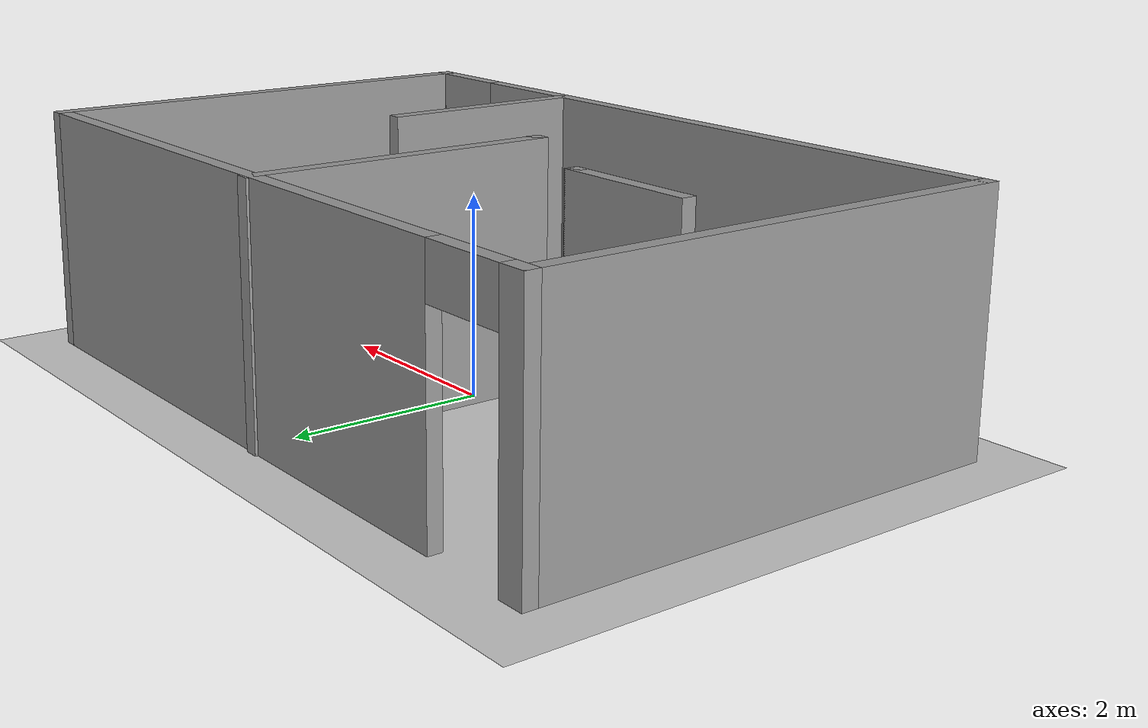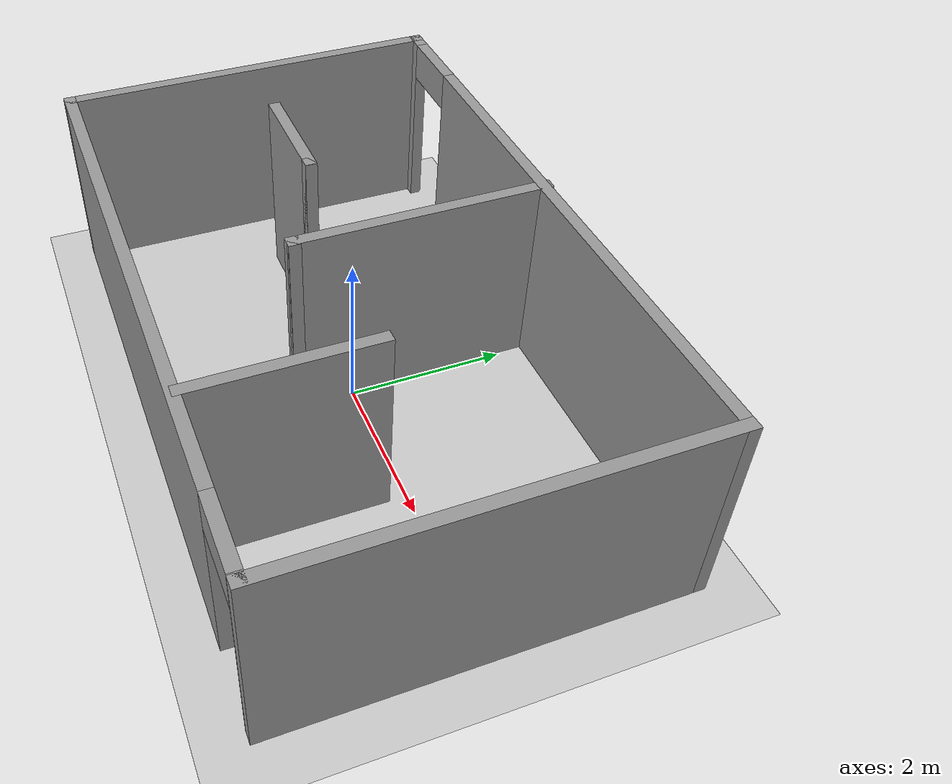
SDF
<?xml version="1.0" ?>
<sdf version="1.6">
  <world name="cooperative_room_world">

    <include>
      <uri>model://sun</uri>
    </include>

    <include>
      <uri>model://ground_plane</uri>
    </include>

    <include>
      <uri>model://cooperative_room</uri>
      <pose>0 0 0 0 0 0</pose>
    </include>

  </world>
</sdf>

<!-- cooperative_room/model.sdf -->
<sdf version='1.7'>
  <model name='cooperative_room'>
    <pose>1.065 -1.59136 0 0 -0 0</pose>
    <link name='Wall_0'>
      <pose>0 -2.43864 0 0 -0 0</pose>
      <visual name='Wall_0_Visual_0'>
        <pose>-0.530912 0 1.25 0 -0 0</pose>
        <geometry>
          <box>
            <size>6.93818 0.15 2.5</size>
          </box>
        </geometry>
        <material>
          <script>
            <uri>file://media/materials/scripts/gazebo.material</uri>
            <name>Gazebo/Grey</name>
          </script>
          <ambient>1 1 1 1</ambient>
        </material>
        <meta>
          <layer>0</layer>
        </meta>
      </visual>
      <collision name='Wall_0_Collision_0'>
        <geometry>
          <box>
            <size>6.93818 0.15 2.5</size>
          </box>
        </geometry>
        <pose>-0.530912 0 1.25 0 -0 0</pose>
      </collision>
      <visual name='Wall_0_Visual_1'>
        <pose>3.91909 0 1.25 0 -0 0</pose>
        <geometry>
          <box>
            <size>0.161823 0.15 2.5</size>
          </box>
        </geometry>
        <material>
          <script>
            <uri>file://media/materials/scripts/gazebo.material</uri>
            <name>Gazebo/Grey</name>
          </script>
          <ambient>1 1 1 1</ambient>
        </material>
        <meta>
          <layer>0</layer>
        </meta>
      </visual>
      <collision name='Wall_0_Collision_1'>
        <geometry>
          <box>
            <size>0.161823 0.15 2.5</size>
          </box>
        </geometry>
        <pose>3.91909 0 1.25 0 -0 0</pose>
      </collision>
      <visual name='Wall_0_Visual_2'>
        <pose>3.38818 0 2.25 0 -0 0</pose>
        <geometry>
          <box>
            <size>0.9 0.15 0.5</size>
          </box>
        </geometry>
        <material>
          <script>
            <uri>file://media/materials/scripts/gazebo.material</uri>
            <name>Gazebo/Grey</name>
          </script>
          <ambient>1 1 1 1</ambient>
        </material>
        <meta>
          <layer>0</layer>
        </meta>
      </visual>
      <collision name='Wall_0_Collision_2'>
        <geometry>
          <box>
            <size>0.9 0.15 0.5</size>
          </box>
        </geometry>
        <pose>3.38818 0 2.25 0 -0 0</pose>
      </collision>
    </link>
    <link name='Wall_1'>
      <collision name='Wall_1_Collision'>
        <geometry>
          <box>
            <size>5 0.15 2.5</size>
          </box>
        </geometry>
        <pose>0 0 1.25 0 -0 0</pose>
      </collision>
      <visual name='Wall_1_Visual'>
        <pose>0 0 1.25 0 -0 0</pose>
        <geometry>
          <box>
            <size>5 0.15 2.5</size>
          </box>
        </geometry>
        <material>
          <script>
            <uri>file://media/materials/scripts/gazebo.material</uri>
            <name>Gazebo/Grey</name>
          </script>
          <ambient>1 1 1 1</ambient>
        </material>
        <meta>
          <layer>0</layer>
        </meta>
      </visual>
      <pose>3.925 -0.013644 0 0 -0 1.5708</pose>
    </link>
    <link name='Wall_10'>
      <collision name='Wall_10_Collision'>
        <geometry>
          <box>
            <size>0.15 0.15 2.5</size>
          </box>
        </geometry>
        <pose>0 0 1.25 0 -0 0</pose>
      </collision>
      <visual name='Wall_10_Visual'>
        <pose>0 0 1.25 0 -0 0</pose>
        <geometry>
          <box>
            <size>0.15 0.15 2.5</size>
          </box>
        </geometry>
        <material>
          <script>
            <uri>file://media/materials/scripts/gazebo.material</uri>
            <name>Gazebo/Grey</name>
          </script>
          <ambient>1 1 1 1</ambient>
        </material>
        <meta>
          <layer>0</layer>
        </meta>
      </visual>
      <pose>-1.51738 0.010254 0 0 -0 0</pose>
    </link>
    <link name='Wall_12'>
      <collision name='Wall_12_Collision'>
        <geometry>
          <box>
            <size>2.25 0.15 2.5</size>
          </box>
        </geometry>
        <pose>0 0 1.25 0 -0 0</pose>
      </collision>
      <visual name='Wall_12_Visual'>
        <pose>0 0 1.25 0 -0 0</pose>
        <geometry>
          <box>
            <size>2.25 0.15 2.5</size>
          </box>
        </geometry>
        <material>
          <script>
            <uri>file://media/materials/scripts/gazebo.material</uri>
            <name>Gazebo/Grey</name>
          </script>
          <ambient>1 1 1 1</ambient>
        </material>
        <meta>
          <layer>0</layer>
        </meta>
      </visual>
      <pose>1.68003 -1.32871 0 0 -0 -1.5708</pose>
    </link>
    <link name='Wall_2'>
      <pose>0 2.41136 0 0 -0 3.14159</pose>
      <visual name='Wall_2_Visual_0'>
        <pose>-0.590292 0 1.25 0 -0 0</pose>
        <geometry>
          <box>
            <size>6.81942 0.15 2.5</size>
          </box>
        </geometry>
        <material>
          <script>
            <uri>file://media/materials/scripts/gazebo.material</uri>
            <name>Gazebo/Grey</name>
          </script>
          <ambient>1 1 1 1</ambient>
        </material>
        <meta>
          <layer>0</layer>
        </meta>
      </visual>
      <collision name='Wall_2_Collision_0'>
        <geometry>
          <box>
            <size>6.81942 0.15 2.5</size>
          </box>
        </geometry>
        <pose>-0.590292 0 1.25 0 -0 0</pose>
      </collision>
      <visual name='Wall_2_Visual_1'>
        <pose>3.85971 0 1.25 0 -0 0</pose>
        <geometry>
          <box>
            <size>0.280585 0.15 2.5</size>
          </box>
        </geometry>
        <material>
          <script>
            <uri>file://media/materials/scripts/gazebo.material</uri>
            <name>Gazebo/Grey</name>
          </script>
          <ambient>1 1 1 1</ambient>
        </material>
        <meta>
          <layer>0</layer>
        </meta>
      </visual>
      <collision name='Wall_2_Collision_1'>
        <geometry>
          <box>
            <size>0.280585 0.15 2.5</size>
          </box>
        </geometry>
        <pose>3.85971 0 1.25 0 -0 0</pose>
      </collision>
      <visual name='Wall_2_Visual_2'>
        <pose>3.26941 0 2.25 0 -0 0</pose>
        <geometry>
          <box>
            <size>0.9 0.15 0.5</size>
          </box>
        </geometry>
        <material>
          <script>
            <uri>file://media/materials/scripts/gazebo.material</uri>
            <name>Gazebo/Grey</name>
          </script>
          <ambient>1 1 1 1</ambient>
        </material>
        <meta>
          <layer>0</layer>
        </meta>
      </visual>
      <collision name='Wall_2_Collision_2'>
        <geometry>
          <box>
            <size>0.9 0.15 0.5</size>
          </box>
        </geometry>
        <pose>3.26941 0 2.25 0 -0 0</pose>
      </collision>
    </link>
    <link name='Wall_3'>
      <collision name='Wall_3_Collision'>
        <geometry>
          <box>
            <size>5 0.15 2.5</size>
          </box>
        </geometry>
        <pose>0 0 1.25 0 -0 0</pose>
      </collision>
      <visual name='Wall_3_Visual'>
        <pose>0 0 1.25 0 -0 0</pose>
        <geometry>
          <box>
            <size>5 0.15 2.5</size>
          </box>
        </geometry>
        <material>
          <script>
            <uri>file://media/materials/scripts/gazebo.material</uri>
            <name>Gazebo/Grey</name>
          </script>
          <ambient>1 1 1 1</ambient>
        </material>
        <meta>
          <layer>0</layer>
        </meta>
      </visual>
      <pose>-3.925 -0.013644 0 0 -0 -1.5708</pose>
    </link>
    <link name='Wall_4'>
      <collision name='Wall_4_Collision'>
        <geometry>
          <box>
            <size>0.16 0.15 2.5</size>
          </box>
        </geometry>
        <pose>0 0 1.25 0 -0 0</pose>
      </collision>
      <visual name='Wall_4_Visual'>
        <pose>0 0 1.25 0 -0 0</pose>
        <geometry>
          <box>
            <size>0.16 0.15 2.5</size>
          </box>
        </geometry>
        <material>
          <script>
            <uri>file://media/materials/scripts/gazebo.material</uri>
            <name>Gazebo/Grey</name>
          </script>
          <ambient>1 1 1 1</ambient>
        </material>
        <meta>
          <layer>0</layer>
        </meta>
      </visual>
      <pose>-3.92 -2.43864 0 0 -0 0</pose>
    </link>
    <link name='Wall_6'>
      <collision name='Wall_6_Collision'>
        <geometry>
          <box>
            <size>3.25 0.15 2.5</size>
          </box>
        </geometry>
        <pose>0 0 1.25 0 -0 0</pose>
      </collision>
      <visual name='Wall_6_Visual'>
        <pose>0 0 1.25 0 -0 0</pose>
        <geometry>
          <box>
            <size>3.25 0.15 2.5</size>
          </box>
        </geometry>
        <material>
          <script>
            <uri>file://media/materials/scripts/gazebo.material</uri>
            <name>Gazebo/Grey</name>
          </script>
          <ambient>1 1 1 1</ambient>
        </material>
        <meta>
          <layer>0</layer>
        </meta>
      </visual>
      <pose>-0.111585 0.888644 0 0 -0 -1.5708</pose>
    </link>
    <link name='Wall_7'>
      <collision name='Wall_7_Collision'>
        <geometry>
          <box>
            <size>0.16 0.15 2.5</size>
          </box>
        </geometry>
        <pose>0 0 1.25 0 -0 0</pose>
      </collision>
      <visual name='Wall_7_Visual'>
        <pose>0 0 1.25 0 -0 0</pose>
        <geometry>
          <box>
            <size>0.16 0.15 2.5</size>
          </box>
        </geometry>
        <material>
          <script>
            <uri>file://media/materials/scripts/gazebo.material</uri>
            <name>Gazebo/Grey</name>
          </script>
          <ambient>1 1 1 1</ambient>
        </material>
        <meta>
          <layer>0</layer>
        </meta>
      </visual>
      <pose>-0.106585 -0.661356 0 0 -0 0</pose>
    </link>
    <link name='Wall_9'>
      <collision name='Wall_9_Collision'>
        <geometry>
          <box>
            <size>1.5 0.15 2.5</size>
          </box>
        </geometry>
        <pose>0 0 1.25 0 -0 0</pose>
      </collision>
      <visual name='Wall_9_Visual'>
        <pose>0 0 1.25 0 -0 0</pose>
        <geometry>
          <box>
            <size>1.5 0.15 2.5</size>
          </box>
        </geometry>
        <material>
          <script>
            <uri>file://media/materials/scripts/gazebo.material</uri>
            <name>Gazebo/Grey</name>
          </script>
          <ambient>1 1 1 1</ambient>
        </material>
        <meta>
          <layer>0</layer>
        </meta>
      </visual>
      <pose>-2.19238 0.010254 0 0 -0 0</pose>
    </link>
    <static>1</static>
  </model>
</sdf>
